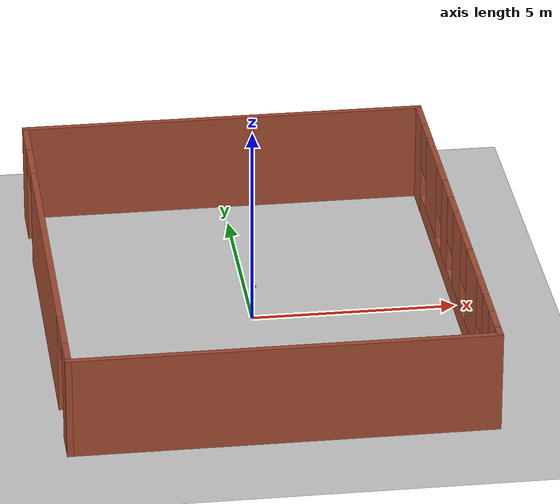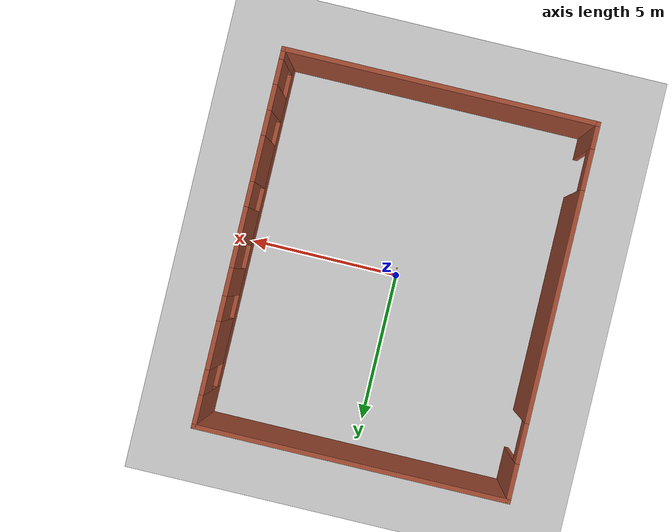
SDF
<sdf version="1.6">
 <world name="default">
  <model name="ground_plane">
   <static>1</static>
   <link name="ground_plane::link">
    <collision name="collision">
     <geometry><plane><normal>0 0 1</normal><size>100 100</size></plane></geometry>
     <surface>
      <contact><collide_bitmask>65535</collide_bitmask></contact>
      <friction><ode><mu>100</mu><mu2>50</mu2></ode></friction>
     </surface>
    </collision>
    <visual name="visual">
     <cast_shadows>0</cast_shadows>
     <geometry><plane><normal>0 0 1</normal><size>100 100</size></plane></geometry>
     <material>
      <script><uri>file://media/materials/scripts/gazebo.material</uri><name>Gazebo/Grey</name></script>
     </material>
    </visual>
   </link>
  </model>
  <model name="robot_house">
   <link name="Wall_5">
    <pose>0 6 0 0 -0 0</pose>
    <visual name="Wall_5_Visual">
     <pose>0 0 1.25 0 -0 0</pose>
     <geometry><box><size>10.15 0.15 2.5</size></box></geometry>
     <material>
      <script><uri>file://media/materials/scripts/gazebo.material</uri><name>Gazebo/Bricks</name></script>
      <ambient>1 1 1 1</ambient>
      <shader type="pixel"/>
      <diffuse>1 1 1 1</diffuse>
      <specular>0.2 0.2 0.2 1</specular>
      <emissive>0 0 0 1</emissive>
     </material>
     <meta><layer>0</layer></meta>
    </visual>
    <collision name="Wall_5_Collision">
     <pose>0 0 1.25 0 -0 0</pose>
     <geometry><box><size>10.15 0.15 2.5</size></box></geometry>
     <surface>
      <friction>
       <ode><mu>1</mu><mu2>1</mu2><fdir1>0 0 0</fdir1><slip1>0</slip1><slip2>0</slip2></ode>
       <torsional>
        <coefficient>1</coefficient>
        <patch_radius>0</patch_radius>
        <surface_radius>0</surface_radius>
        <use_patch_radius>1</use_patch_radius>
        <ode><slip>0</slip></ode>
       </torsional>
      </friction>
      <bounce><restitution_coefficient>0</restitution_coefficient><threshold>1e+06</threshold></bounce>
      <contact>
       <collide_without_contact>0</collide_without_contact>
       <collide_without_contact_bitmask>1</collide_without_contact_bitmask>
       <collide_bitmask>1</collide_bitmask>
       <ode>
        <soft_cfm>0</soft_cfm>
        <soft_erp>0.2</soft_erp>
        <kp>1e+13</kp>
        <kd>1</kd>
        <max_vel>0.01</max_vel>
        <min_depth>0</min_depth>
       </ode>
       <bullet>
        <split_impulse>1</split_impulse>
        <split_impulse_penetration_threshold>-0.01</split_impulse_penetration_threshold>
        <soft_cfm>0</soft_cfm>
        <soft_erp>0.2</soft_erp>
        <kp>1e+13</kp>
        <kd>1</kd>
       </bullet>
      </contact>
     </surface>
    </collision>
   </link>
   <link name="Wall_6">
    <pose>5 0 0 0 0 -1.5708</pose>
    <visual name="Wall_6_Visual_2">
     <pose>-3.42977 0 1.5 0 -0 0</pose>
     <geometry><box><size>1.54642 0.15 2</size></box></geometry>
     <material>
      <script><uri>file://media/materials/scripts/gazebo.material</uri><name>Gazebo/Bricks</name></script>
      <ambient>1 1 1 1</ambient>
      <shader type="pixel"/>
      <diffuse>1 1 1 1</diffuse>
      <specular>0.2 0.2 0.2 1</specular>
      <emissive>0 0 0 1</emissive>
     </material>
     <meta><layer>0</layer></meta>
    </visual>
    <visual name="Wall_6_Visual_8">
     <pose>-4.60298 0 1.9 0 -0 0</pose>
     <geometry><box><size>0.8 0.15 1.2</size></box></geometry>
     <material>
      <script><uri>file://media/materials/scripts/gazebo.material</uri><name>Gazebo/Bricks</name></script>
      <ambient>1 1 1 1</ambient>
      <shader type="pixel"/>
      <diffuse>1 1 1 1</diffuse>
      <specular>0.2 0.2 0.2 1</specular>
      <emissive>0 0 0 1</emissive>
     </material>
     <meta><layer>0</layer></meta>
    </visual>
    <visual name="Wall_6_Visual_12">
     <pose>3.64995 0 1.9 0 -0 0</pose>
     <geometry><box><size>0.8 0.15 1.2</size></box></geometry>
     <material>
      <script><uri>file://media/materials/scripts/gazebo.material</uri><name>Gazebo/Bricks</name></script>
      <ambient>1 1 1 1</ambient>
      <shader type="pixel"/>
      <diffuse>1 1 1 1</diffuse>
      <specular>0.2 0.2 0.2 1</specular>
      <emissive>0 0 0 1</emissive>
     </material>
     <meta><layer>0</layer></meta>
    </visual>
    <visual name="Wall_6_Visual_6">
     <pose>4.45907 0 1.5 0 -0 0</pose>
     <geometry><box><size>0.818223 0.15 2</size></box></geometry>
     <material>
      <script><uri>file://media/materials/scripts/gazebo.material</uri><name>Gazebo/Bricks</name></script>
      <ambient>1 1 1 1</ambient>
      <shader type="pixel"/>
      <diffuse>1 1 1 1</diffuse>
      <specular>0.2 0.2 0.2 1</specular>
      <emissive>0 0 0 1</emissive>
     </material>
     <meta><layer>0</layer></meta>
    </visual>
    <visual name="Wall_6_Visual_1">
     <pose>0.536009 0 0.25 0 -0 0</pose>
     <geometry><box><size>11.078 0.15 0.5</size></box></geometry>
     <material>
      <script><uri>file://media/materials/scripts/gazebo.material</uri><name>Gazebo/Bricks</name></script>
      <ambient>1 1 1 1</ambient>
      <shader type="pixel"/>
      <diffuse>1 1 1 1</diffuse>
      <specular>0.2 0.2 0.2 1</specular>
      <emissive>0 0 0 1</emissive>
     </material>
     <meta><layer>0</layer></meta>
    </visual>
    <visual name="Wall_6_Visual_13">
     <pose>5.26818 0 1.9 0 -0 0</pose>
     <geometry><box><size>0.8 0.15 1.2</size></box></geometry>
     <material>
      <script><uri>file://media/materials/scripts/gazebo.material</uri><name>Gazebo/Bricks</name></script>
      <ambient>1 1 1 1</ambient>
      <shader type="pixel"/>
      <diffuse>1 1 1 1</diffuse>
      <specular>0.2 0.2 0.2 1</specular>
      <emissive>0 0 0 1</emissive>
     </material>
     <meta><layer>0</layer></meta>
    </visual>
    <visual name="Wall_6_Visual_10">
     <pose>-0.557425 0 1.9 0 -0 0</pose>
     <geometry><box><size>0.8 0.15 1.2</size></box></geometry>
     <material>
      <script><uri>file://media/materials/scripts/gazebo.material</uri><name>Gazebo/Bricks</name></script>
      <ambient>1 1 1 1</ambient>
      <shader type="pixel"/>
      <diffuse>1 1 1 1</diffuse>
      <specular>0.2 0.2 0.2 1</specular>
      <emissive>0 0 0 1</emissive>
     </material>
     <meta><layer>0</layer></meta>
    </visual>
    <visual name="Wall_6_Visual_11">
     <pose>1.38444 0 1.9 0 -0 0</pose>
     <geometry><box><size>0.8 0.15 1.2</size></box></geometry>
     <material>
      <script><uri>file://media/materials/scripts/gazebo.material</uri><name>Gazebo/Bricks</name></script>
      <ambient>1 1 1 1</ambient>
      <shader type="pixel"/>
      <diffuse>1 1 1 1</diffuse>
      <specular>0.2 0.2 0.2 1</specular>
      <emissive>0 0 0 1</emissive>
     </material>
     <meta><layer>0</layer></meta>
    </visual>
    <visual name="Wall_6_Visual_7">
     <pose>5.87159 0 1.5 0 -0 0</pose>
     <geometry><box><size>0.406822 0.15 2</size></box></geometry>
     <material>
      <script><uri>file://media/materials/scripts/gazebo.material</uri><name>Gazebo/Bricks</name></script>
      <ambient>1 1 1 1</ambient>
      <shader type="pixel"/>
      <diffuse>1 1 1 1</diffuse>
      <specular>0.2 0.2 0.2 1</specular>
      <emissive>0 0 0 1</emissive>
     </material>
     <meta><layer>0</layer></meta>
    </visual>
    <visual name="Wall_6_Visual_4">
     <pose>0.413508 0 1.5 0 -0 0</pose>
     <geometry><box><size>1.14187 0.15 2</size></box></geometry>
     <material>
      <script><uri>file://media/materials/scripts/gazebo.material</uri><name>Gazebo/Bricks</name></script>
      <ambient>1 1 1 1</ambient>
      <shader type="pixel"/>
      <diffuse>1 1 1 1</diffuse>
      <specular>0.2 0.2 0.2 1</specular>
      <emissive>0 0 0 1</emissive>
     </material>
     <meta><layer>0</layer></meta>
    </visual>
    <visual name="Wall_6_Visual_5">
     <pose>2.5172 0 1.5 0 -0 0</pose>
     <geometry><box><size>1.46551 0.15 2</size></box></geometry>
     <material>
      <script><uri>file://media/materials/scripts/gazebo.material</uri><name>Gazebo/Bricks</name></script>
      <ambient>1 1 1 1</ambient>
      <shader type="pixel"/>
      <diffuse>1 1 1 1</diffuse>
      <specular>0.2 0.2 0.2 1</specular>
      <emissive>0 0 0 1</emissive>
     </material>
     <meta><layer>0</layer></meta>
    </visual>
    <visual name="Wall_6_Visual_3">
     <pose>-1.40699 0 1.5 0 -0 0</pose>
     <geometry><box><size>0.899134 0.15 2</size></box></geometry>
     <material>
      <script><uri>file://media/materials/scripts/gazebo.material</uri><name>Gazebo/Bricks</name></script>
      <ambient>1 1 1 1</ambient>
      <shader type="pixel"/>
      <diffuse>1 1 1 1</diffuse>
      <specular>0.2 0.2 0.2 1</specular>
      <emissive>0 0 0 1</emissive>
     </material>
     <meta><layer>0</layer></meta>
    </visual>
    <visual name="Wall_6_Visual_9">
     <pose>-2.25656 0 1.9 0 -0 0</pose>
     <geometry><box><size>0.8 0.15 1.2</size></box></geometry>
     <material>
      <script><uri>file://media/materials/scripts/gazebo.material</uri><name>Gazebo/Bricks</name></script>
      <ambient>1 1 1 1</ambient>
      <shader type="pixel"/>
      <diffuse>1 1 1 1</diffuse>
      <specular>0.2 0.2 0.2 1</specular>
      <emissive>0 0 0 1</emissive>
     </material>
     <meta><layer>0</layer></meta>
    </visual>
    <visual name="Wall_6_Visual_0">
     <pose>-5.53899 0 1.25 0 -0 0</pose>
     <geometry><box><size>1.07202 0.15 2.5</size></box></geometry>
     <material>
      <script><uri>file://media/materials/scripts/gazebo.material</uri><name>Gazebo/Bricks</name></script>
      <ambient>1 1 1 1</ambient>
      <shader type="pixel"/>
      <diffuse>1 1 1 1</diffuse>
      <specular>0.2 0.2 0.2 1</specular>
      <emissive>0 0 0 1</emissive>
     </material>
     <meta><layer>0</layer></meta>
    </visual>
    <collision name="Wall_6_Collision_2">
     <pose>-3.42977 0 1.5 0 -0 0</pose>
     <geometry><box><size>1.54642 0.15 2</size></box></geometry>
     <surface>
      <friction>
       <ode><mu>1</mu><mu2>1</mu2><fdir1>0 0 0</fdir1><slip1>0</slip1><slip2>0</slip2></ode>
       <torsional>
        <coefficient>1</coefficient>
        <patch_radius>0</patch_radius>
        <surface_radius>0</surface_radius>
        <use_patch_radius>1</use_patch_radius>
        <ode><slip>0</slip></ode>
       </torsional>
      </friction>
      <bounce><restitution_coefficient>0</restitution_coefficient><threshold>1e+06</threshold></bounce>
      <contact>
       <collide_without_contact>0</collide_without_contact>
       <collide_without_contact_bitmask>1</collide_without_contact_bitmask>
       <collide_bitmask>1</collide_bitmask>
       <ode>
        <soft_cfm>0</soft_cfm>
        <soft_erp>0.2</soft_erp>
        <kp>1e+13</kp>
        <kd>1</kd>
        <max_vel>0.01</max_vel>
        <min_depth>0</min_depth>
       </ode>
       <bullet>
        <split_impulse>1</split_impulse>
        <split_impulse_penetration_threshold>-0.01</split_impulse_penetration_threshold>
        <soft_cfm>0</soft_cfm>
        <soft_erp>0.2</soft_erp>
        <kp>1e+13</kp>
        <kd>1</kd>
       </bullet>
      </contact>
     </surface>
    </collision>
    <collision name="Wall_6_Collision_4">
     <pose>0.413508 0 1.5 0 -0 0</pose>
     <geometry><box><size>1.14187 0.15 2</size></box></geometry>
     <surface>
      <friction>
       <ode><mu>1</mu><mu2>1</mu2><fdir1>0 0 0</fdir1><slip1>0</slip1><slip2>0</slip2></ode>
       <torsional>
        <coefficient>1</coefficient>
        <patch_radius>0</patch_radius>
        <surface_radius>0</surface_radius>
        <use_patch_radius>1</use_patch_radius>
        <ode><slip>0</slip></ode>
       </torsional>
      </friction>
      <bounce><restitution_coefficient>0</restitution_coefficient><threshold>1e+06</threshold></bounce>
      <contact>
       <collide_without_contact>0</collide_without_contact>
       <collide_without_contact_bitmask>1</collide_without_contact_bitmask>
       <collide_bitmask>1</collide_bitmask>
       <ode>
        <soft_cfm>0</soft_cfm>
        <soft_erp>0.2</soft_erp>
        <kp>1e+13</kp>
        <kd>1</kd>
        <max_vel>0.01</max_vel>
        <min_depth>0</min_depth>
       </ode>
       <bullet>
        <split_impulse>1</split_impulse>
        <split_impulse_penetration_threshold>-0.01</split_impulse_penetration_threshold>
        <soft_cfm>0</soft_cfm>
        <soft_erp>0.2</soft_erp>
        <kp>1e+13</kp>
        <kd>1</kd>
       </bullet>
      </contact>
     </surface>
    </collision>
    <collision name="Wall_6_Collision_5">
     <pose>2.5172 0 1.5 0 -0 0</pose>
     <geometry><box><size>1.46551 0.15 2</size></box></geometry>
     <surface>
      <friction>
       <ode><mu>1</mu><mu2>1</mu2><fdir1>0 0 0</fdir1><slip1>0</slip1><slip2>0</slip2></ode>
       <torsional>
        <coefficient>1</coefficient>
        <patch_radius>0</patch_radius>
        <surface_radius>0</surface_radius>
        <use_patch_radius>1</use_patch_radius>
        <ode><slip>0</slip></ode>
       </torsional>
      </friction>
      <bounce><restitution_coefficient>0</restitution_coefficient><threshold>1e+06</threshold></bounce>
      <contact>
       <collide_without_contact>0</collide_without_contact>
       <collide_without_contact_bitmask>1</collide_without_contact_bitmask>
       <collide_bitmask>1</collide_bitmask>
       <ode>
        <soft_cfm>0</soft_cfm>
        <soft_erp>0.2</soft_erp>
        <kp>1e+13</kp>
        <kd>1</kd>
        <max_vel>0.01</max_vel>
        <min_depth>0</min_depth>
       </ode>
       <bullet>
        <split_impulse>1</split_impulse>
        <split_impulse_penetration_threshold>-0.01</split_impulse_penetration_threshold>
        <soft_cfm>0</soft_cfm>
        <soft_erp>0.2</soft_erp>
        <kp>1e+13</kp>
        <kd>1</kd>
       </bullet>
      </contact>
     </surface>
    </collision>
    <collision name="Wall_6_Collision_1">
     <pose>0.536009 0 0.25 0 -0 0</pose>
     <geometry><box><size>11.078 0.15 0.5</size></box></geometry>
     <surface>
      <friction>
       <ode><mu>1</mu><mu2>1</mu2><fdir1>0 0 0</fdir1><slip1>0</slip1><slip2>0</slip2></ode>
       <torsional>
        <coefficient>1</coefficient>
        <patch_radius>0</patch_radius>
        <surface_radius>0</surface_radius>
        <use_patch_radius>1</use_patch_radius>
        <ode><slip>0</slip></ode>
       </torsional>
      </friction>
      <bounce><restitution_coefficient>0</restitution_coefficient><threshold>1e+06</threshold></bounce>
      <contact>
       <collide_without_contact>0</collide_without_contact>
       <collide_without_contact_bitmask>1</collide_without_contact_bitmask>
       <collide_bitmask>1</collide_bitmask>
       <ode>
        <soft_cfm>0</soft_cfm>
        <soft_erp>0.2</soft_erp>
        <kp>1e+13</kp>
        <kd>1</kd>
        <max_vel>0.01</max_vel>
        <min_depth>0</min_depth>
       </ode>
       <bullet>
        <split_impulse>1</split_impulse>
        <split_impulse_penetration_threshold>-0.01</split_impulse_penetration_threshold>
        <soft_cfm>0</soft_cfm>
        <soft_erp>0.2</soft_erp>
        <kp>1e+13</kp>
        <kd>1</kd>
       </bullet>
      </contact>
     </surface>
    </collision>
    <collision name="Wall_6_Collision_8">
     <pose>-4.60298 0 1.9 0 -0 0</pose>
     <geometry><box><size>0.8 0.15 1.2</size></box></geometry>
     <surface>
      <friction>
       <ode><mu>1</mu><mu2>1</mu2><fdir1>0 0 0</fdir1><slip1>0</slip1><slip2>0</slip2></ode>
       <torsional>
        <coefficient>1</coefficient>
        <patch_radius>0</patch_radius>
        <surface_radius>0</surface_radius>
        <use_patch_radius>1</use_patch_radius>
        <ode><slip>0</slip></ode>
       </torsional>
      </friction>
      <bounce><restitution_coefficient>0</restitution_coefficient><threshold>1e+06</threshold></bounce>
      <contact>
       <collide_without_contact>0</collide_without_contact>
       <collide_without_contact_bitmask>1</collide_without_contact_bitmask>
       <collide_bitmask>1</collide_bitmask>
       <ode>
        <soft_cfm>0</soft_cfm>
        <soft_erp>0.2</soft_erp>
        <kp>1e+13</kp>
        <kd>1</kd>
        <max_vel>0.01</max_vel>
        <min_depth>0</min_depth>
       </ode>
       <bullet>
        <split_impulse>1</split_impulse>
        <split_impulse_penetration_threshold>-0.01</split_impulse_penetration_threshold>
        <soft_cfm>0</soft_cfm>
        <soft_erp>0.2</soft_erp>
        <kp>1e+13</kp>
        <kd>1</kd>
       </bullet>
      </contact>
     </surface>
    </collision>
    <collision name="Wall_6_Collision_9">
     <pose>-2.25656 0 1.9 0 -0 0</pose>
     <geometry><box><size>0.8 0.15 1.2</size></box></geometry>
     <surface>
      <friction>
       <ode><mu>1</mu><mu2>1</mu2><fdir1>0 0 0</fdir1><slip1>0</slip1><slip2>0</slip2></ode>
       <torsional>
        <coefficient>1</coefficient>
        <patch_radius>0</patch_radius>
        <surface_radius>0</surface_radius>
        <use_patch_radius>1</use_patch_radius>
        <ode><slip>0</slip></ode>
       </torsional>
      </friction>
      <bounce><restitution_coefficient>0</restitution_coefficient><threshold>1e+06</threshold></bounce>
      <contact>
       <collide_without_contact>0</collide_without_contact>
       <collide_without_contact_bitmask>1</collide_without_contact_bitmask>
       <collide_bitmask>1</collide_bitmask>
       <ode>
        <soft_cfm>0</soft_cfm>
        <soft_erp>0.2</soft_erp>
        <kp>1e+13</kp>
        <kd>1</kd>
        <max_vel>0.01</max_vel>
        <min_depth>0</min_depth>
       </ode>
       <bullet>
        <split_impulse>1</split_impulse>
        <split_impulse_penetration_threshold>-0.01</split_impulse_penetration_threshold>
        <soft_cfm>0</soft_cfm>
        <soft_erp>0.2</soft_erp>
        <kp>1e+13</kp>
        <kd>1</kd>
       </bullet>
      </contact>
     </surface>
    </collision>
    <collision name="Wall_6_Collision_10">
     <pose>-0.557425 0 1.9 0 -0 0</pose>
     <geometry><box><size>0.8 0.15 1.2</size></box></geometry>
     <surface>
      <friction>
       <ode><mu>1</mu><mu2>1</mu2><fdir1>0 0 0</fdir1><slip1>0</slip1><slip2>0</slip2></ode>
       <torsional>
        <coefficient>1</coefficient>
        <patch_radius>0</patch_radius>
        <surface_radius>0</surface_radius>
        <use_patch_radius>1</use_patch_radius>
        <ode><slip>0</slip></ode>
       </torsional>
      </friction>
      <bounce><restitution_coefficient>0</restitution_coefficient><threshold>1e+06</threshold></bounce>
      <contact>
       <collide_without_contact>0</collide_without_contact>
       <collide_without_contact_bitmask>1</collide_without_contact_bitmask>
       <collide_bitmask>1</collide_bitmask>
       <ode>
        <soft_cfm>0</soft_cfm>
        <soft_erp>0.2</soft_erp>
        <kp>1e+13</kp>
        <kd>1</kd>
        <max_vel>0.01</max_vel>
        <min_depth>0</min_depth>
       </ode>
       <bullet>
        <split_impulse>1</split_impulse>
        <split_impulse_penetration_threshold>-0.01</split_impulse_penetration_threshold>
        <soft_cfm>0</soft_cfm>
        <soft_erp>0.2</soft_erp>
        <kp>1e+13</kp>
        <kd>1</kd>
       </bullet>
      </contact>
     </surface>
    </collision>
    <collision name="Wall_6_Collision_11">
     <pose>1.38444 0 1.9 0 -0 0</pose>
     <geometry><box><size>0.8 0.15 1.2</size></box></geometry>
     <surface>
      <friction>
       <ode><mu>1</mu><mu2>1</mu2><fdir1>0 0 0</fdir1><slip1>0</slip1><slip2>0</slip2></ode>
       <torsional>
        <coefficient>1</coefficient>
        <patch_radius>0</patch_radius>
        <surface_radius>0</surface_radius>
        <use_patch_radius>1</use_patch_radius>
        <ode><slip>0</slip></ode>
       </torsional>
      </friction>
      <bounce><restitution_coefficient>0</restitution_coefficient><threshold>1e+06</threshold></bounce>
      <contact>
       <collide_without_contact>0</collide_without_contact>
       <collide_without_contact_bitmask>1</collide_without_contact_bitmask>
       <collide_bitmask>1</collide_bitmask>
       <ode>
        <soft_cfm>0</soft_cfm>
        <soft_erp>0.2</soft_erp>
        <kp>1e+13</kp>
        <kd>1</kd>
        <max_vel>0.01</max_vel>
        <min_depth>0</min_depth>
       </ode>
       <bullet>
        <split_impulse>1</split_impulse>
        <split_impulse_penetration_threshold>-0.01</split_impulse_penetration_threshold>
        <soft_cfm>0</soft_cfm>
        <soft_erp>0.2</soft_erp>
        <kp>1e+13</kp>
        <kd>1</kd>
       </bullet>
      </contact>
     </surface>
    </collision>
    <collision name="Wall_6_Collision_12">
     <pose>3.64995 0 1.9 0 -0 0</pose>
     <geometry><box><size>0.8 0.15 1.2</size></box></geometry>
     <surface>
      <friction>
       <ode><mu>1</mu><mu2>1</mu2><fdir1>0 0 0</fdir1><slip1>0</slip1><slip2>0</slip2></ode>
       <torsional>
        <coefficient>1</coefficient>
        <patch_radius>0</patch_radius>
        <surface_radius>0</surface_radius>
        <use_patch_radius>1</use_patch_radius>
        <ode><slip>0</slip></ode>
       </torsional>
      </friction>
      <bounce><restitution_coefficient>0</restitution_coefficient><threshold>1e+06</threshold></bounce>
      <contact>
       <collide_without_contact>0</collide_without_contact>
       <collide_without_contact_bitmask>1</collide_without_contact_bitmask>
       <collide_bitmask>1</collide_bitmask>
       <ode>
        <soft_cfm>0</soft_cfm>
        <soft_erp>0.2</soft_erp>
        <kp>1e+13</kp>
        <kd>1</kd>
        <max_vel>0.01</max_vel>
        <min_depth>0</min_depth>
       </ode>
       <bullet>
        <split_impulse>1</split_impulse>
        <split_impulse_penetration_threshold>-0.01</split_impulse_penetration_threshold>
        <soft_cfm>0</soft_cfm>
        <soft_erp>0.2</soft_erp>
        <kp>1e+13</kp>
        <kd>1</kd>
       </bullet>
      </contact>
     </surface>
    </collision>
    <collision name="Wall_6_Collision_13">
     <pose>5.26818 0 1.9 0 -0 0</pose>
     <geometry><box><size>0.8 0.15 1.2</size></box></geometry>
     <surface>
      <friction>
       <ode><mu>1</mu><mu2>1</mu2><fdir1>0 0 0</fdir1><slip1>0</slip1><slip2>0</slip2></ode>
       <torsional>
        <coefficient>1</coefficient>
        <patch_radius>0</patch_radius>
        <surface_radius>0</surface_radius>
        <use_patch_radius>1</use_patch_radius>
        <ode><slip>0</slip></ode>
       </torsional>
      </friction>
      <bounce><restitution_coefficient>0</restitution_coefficient><threshold>1e+06</threshold></bounce>
      <contact>
       <collide_without_contact>0</collide_without_contact>
       <collide_without_contact_bitmask>1</collide_without_contact_bitmask>
       <collide_bitmask>1</collide_bitmask>
       <ode>
        <soft_cfm>0</soft_cfm>
        <soft_erp>0.2</soft_erp>
        <kp>1e+13</kp>
        <kd>1</kd>
        <max_vel>0.01</max_vel>
        <min_depth>0</min_depth>
       </ode>
       <bullet>
        <split_impulse>1</split_impulse>
        <split_impulse_penetration_threshold>-0.01</split_impulse_penetration_threshold>
        <soft_cfm>0</soft_cfm>
        <soft_erp>0.2</soft_erp>
        <kp>1e+13</kp>
        <kd>1</kd>
       </bullet>
      </contact>
     </surface>
    </collision>
    <collision name="Wall_6_Collision_3">
     <pose>-1.40699 0 1.5 0 -0 0</pose>
     <geometry><box><size>0.899134 0.15 2</size></box></geometry>
     <surface>
      <friction>
       <ode><mu>1</mu><mu2>1</mu2><fdir1>0 0 0</fdir1><slip1>0</slip1><slip2>0</slip2></ode>
       <torsional>
        <coefficient>1</coefficient>
        <patch_radius>0</patch_radius>
        <surface_radius>0</surface_radius>
        <use_patch_radius>1</use_patch_radius>
        <ode><slip>0</slip></ode>
       </torsional>
      </friction>
      <bounce><restitution_coefficient>0</restitution_coefficient><threshold>1e+06</threshold></bounce>
      <contact>
       <collide_without_contact>0</collide_without_contact>
       <collide_without_contact_bitmask>1</collide_without_contact_bitmask>
       <collide_bitmask>1</collide_bitmask>
       <ode>
        <soft_cfm>0</soft_cfm>
        <soft_erp>0.2</soft_erp>
        <kp>1e+13</kp>
        <kd>1</kd>
        <max_vel>0.01</max_vel>
        <min_depth>0</min_depth>
       </ode>
       <bullet>
        <split_impulse>1</split_impulse>
        <split_impulse_penetration_threshold>-0.01</split_impulse_penetration_threshold>
        <soft_cfm>0</soft_cfm>
        <soft_erp>0.2</soft_erp>
        <kp>1e+13</kp>
        <kd>1</kd>
       </bullet>
      </contact>
     </surface>
    </collision>
    <collision name="Wall_6_Collision_6">
     <pose>4.45907 0 1.5 0 -0 0</pose>
     <geometry><box><size>0.818223 0.15 2</size></box></geometry>
     <surface>
      <friction>
       <ode><mu>1</mu><mu2>1</mu2><fdir1>0 0 0</fdir1><slip1>0</slip1><slip2>0</slip2></ode>
       <torsional>
        <coefficient>1</coefficient>
        <patch_radius>0</patch_radius>
        <surface_radius>0</surface_radius>
        <use_patch_radius>1</use_patch_radius>
        <ode><slip>0</slip></ode>
       </torsional>
      </friction>
      <bounce><restitution_coefficient>0</restitution_coefficient><threshold>1e+06</threshold></bounce>
      <contact>
       <collide_without_contact>0</collide_without_contact>
       <collide_without_contact_bitmask>1</collide_without_contact_bitmask>
       <collide_bitmask>1</collide_bitmask>
       <ode>
        <soft_cfm>0</soft_cfm>
        <soft_erp>0.2</soft_erp>
        <kp>1e+13</kp>
        <kd>1</kd>
        <max_vel>0.01</max_vel>
        <min_depth>0</min_depth>
       </ode>
       <bullet>
        <split_impulse>1</split_impulse>
        <split_impulse_penetration_threshold>-0.01</split_impulse_penetration_threshold>
        <soft_cfm>0</soft_cfm>
        <soft_erp>0.2</soft_erp>
        <kp>1e+13</kp>
        <kd>1</kd>
       </bullet>
      </contact>
     </surface>
    </collision>
    <collision name="Wall_6_Collision_7">
     <pose>5.87159 0 1.5 0 -0 0</pose>
     <geometry><box><size>0.406822 0.15 2</size></box></geometry>
     <surface>
      <friction>
       <ode><mu>1</mu><mu2>1</mu2><fdir1>0 0 0</fdir1><slip1>0</slip1><slip2>0</slip2></ode>
       <torsional>
        <coefficient>1</coefficient>
        <patch_radius>0</patch_radius>
        <surface_radius>0</surface_radius>
        <use_patch_radius>1</use_patch_radius>
        <ode><slip>0</slip></ode>
       </torsional>
      </friction>
      <bounce><restitution_coefficient>0</restitution_coefficient><threshold>1e+06</threshold></bounce>
      <contact>
       <collide_without_contact>0</collide_without_contact>
       <collide_without_contact_bitmask>1</collide_without_contact_bitmask>
       <collide_bitmask>1</collide_bitmask>
       <ode>
        <soft_cfm>0</soft_cfm>
        <soft_erp>0.2</soft_erp>
        <kp>1e+13</kp>
        <kd>1</kd>
        <max_vel>0.01</max_vel>
        <min_depth>0</min_depth>
       </ode>
       <bullet>
        <split_impulse>1</split_impulse>
        <split_impulse_penetration_threshold>-0.01</split_impulse_penetration_threshold>
        <soft_cfm>0</soft_cfm>
        <soft_erp>0.2</soft_erp>
        <kp>1e+13</kp>
        <kd>1</kd>
       </bullet>
      </contact>
     </surface>
    </collision>
    <collision name="Wall_6_Collision_0">
     <pose>-5.53899 0 1.25 0 -0 0</pose>
     <geometry><box><size>1.07202 0.15 2.5</size></box></geometry>
     <surface>
      <friction>
       <ode><mu>1</mu><mu2>1</mu2><fdir1>0 0 0</fdir1><slip1>0</slip1><slip2>0</slip2></ode>
       <torsional>
        <coefficient>1</coefficient>
        <patch_radius>0</patch_radius>
        <surface_radius>0</surface_radius>
        <use_patch_radius>1</use_patch_radius>
        <ode><slip>0</slip></ode>
       </torsional>
      </friction>
      <bounce><restitution_coefficient>0</restitution_coefficient><threshold>1e+06</threshold></bounce>
      <contact>
       <collide_without_contact>0</collide_without_contact>
       <collide_without_contact_bitmask>1</collide_without_contact_bitmask>
       <collide_bitmask>1</collide_bitmask>
       <ode>
        <soft_cfm>0</soft_cfm>
        <soft_erp>0.2</soft_erp>
        <kp>1e+13</kp>
        <kd>1</kd>
        <max_vel>0.01</max_vel>
        <min_depth>0</min_depth>
       </ode>
       <bullet>
        <split_impulse>1</split_impulse>
        <split_impulse_penetration_threshold>-0.01</split_impulse_penetration_threshold>
        <soft_cfm>0</soft_cfm>
        <soft_erp>0.2</soft_erp>
        <kp>1e+13</kp>
        <kd>1</kd>
       </bullet>
      </contact>
     </surface>
    </collision>
   </link>
   <link name="Wall_7">
    <pose>0 -6 0 0 -0 3.14159</pose>
    <visual name="Wall_7_Visual">
     <pose>0 0 1.25 0 -0 0</pose>
     <geometry><box><size>10.15 0.15 2.5</size></box></geometry>
     <material>
      <script><uri>file://media/materials/scripts/gazebo.material</uri><name>Gazebo/Bricks</name></script>
      <ambient>1 1 1 1</ambient>
      <shader type="pixel"/>
      <diffuse>1 1 1 1</diffuse>
      <specular>0.2 0.2 0.2 1</specular>
      <emissive>0 0 0 1</emissive>
     </material>
     <meta><layer>0</layer></meta>
    </visual>
    <collision name="Wall_7_Collision">
     <pose>0 0 1.25 0 -0 0</pose>
     <geometry><box><size>10.15 0.15 2.5</size></box></geometry>
     <surface>
      <friction>
       <ode><mu>1</mu><mu2>1</mu2><fdir1>0 0 0</fdir1><slip1>0</slip1><slip2>0</slip2></ode>
       <torsional>
        <coefficient>1</coefficient>
        <patch_radius>0</patch_radius>
        <surface_radius>0</surface_radius>
        <use_patch_radius>1</use_patch_radius>
        <ode><slip>0</slip></ode>
       </torsional>
      </friction>
      <bounce><restitution_coefficient>0</restitution_coefficient><threshold>1e+06</threshold></bounce>
      <contact>
       <collide_without_contact>0</collide_without_contact>
       <collide_without_contact_bitmask>1</collide_without_contact_bitmask>
       <collide_bitmask>1</collide_bitmask>
       <ode>
        <soft_cfm>0</soft_cfm>
        <soft_erp>0.2</soft_erp>
        <kp>1e+13</kp>
        <kd>1</kd>
        <max_vel>0.01</max_vel>
        <min_depth>0</min_depth>
       </ode>
       <bullet>
        <split_impulse>1</split_impulse>
        <split_impulse_penetration_threshold>-0.01</split_impulse_penetration_threshold>
        <soft_cfm>0</soft_cfm>
        <soft_erp>0.2</soft_erp>
        <kp>1e+13</kp>
        <kd>1</kd>
       </bullet>
      </contact>
     </surface>
    </collision>
   </link>
   <link name="Wall_8">
    <pose>-5 0 0 0 -0 1.5708</pose>
    <visual name="Wall_8_Visual_0">
     <pose>-5.63743 0 1.25 0 -0 0</pose>
     <geometry><box><size>0.87514 0.15 2.5</size></box></geometry>
     <material>
      <script><uri>file://media/materials/scripts/gazebo.material</uri><name>Gazebo/Bricks</name></script>
      <ambient>1 1 1 1</ambient>
      <shader type="pixel"/>
      <diffuse>1 1 1 1</diffuse>
      <specular>0.2 0.2 0.2 1</specular>
      <emissive>0 0 0 1</emissive>
     </material>
     <meta><layer>0</layer></meta>
    </visual>
    <visual name="Wall_8_Visual_1">
     <pose>-0.1843 0 1.25 0 -0 0</pose>
     <geometry><box><size>7.41283 0.15 2.5</size></box></geometry>
     <material>
      <script><uri>file://media/materials/scripts/gazebo.material</uri><name>Gazebo/Bricks</name></script>
      <ambient>1 1 1 1</ambient>
      <shader type="pixel"/>
      <diffuse>1 1 1 1</diffuse>
      <specular>0.2 0.2 0.2 1</specular>
      <emissive>0 0 0 1</emissive>
     </material>
     <meta><layer>0</layer></meta>
    </visual>
    <visual name="Wall_8_Visual_2">
     <pose>5.43964 0 1.25 0 -0 0</pose>
     <geometry><box><size>1.27073 0.15 2.5</size></box></geometry>
     <material>
      <script><uri>file://media/materials/scripts/gazebo.material</uri><name>Gazebo/Bricks</name></script>
      <ambient>1 1 1 1</ambient>
      <shader type="pixel"/>
      <diffuse>1 1 1 1</diffuse>
      <specular>0.2 0.2 0.2 1</specular>
      <emissive>0 0 0 1</emissive>
     </material>
     <meta><layer>0</layer></meta>
    </visual>
    <visual name="Wall_8_Visual_3">
     <pose>-4.54529 0 2.25 0 -0 0</pose>
     <geometry><box><size>1.30915 0.15 0.5</size></box></geometry>
     <material>
      <script><uri>file://media/materials/scripts/gazebo.material</uri><name>Gazebo/Bricks</name></script>
      <ambient>1 1 1 1</ambient>
      <shader type="pixel"/>
      <diffuse>1 1 1 1</diffuse>
      <specular>0.2 0.2 0.2 1</specular>
      <emissive>0 0 0 1</emissive>
     </material>
     <meta><layer>0</layer></meta>
    </visual>
    <visual name="Wall_8_Visual_4">
     <pose>4.16319 0 2.25 0 -0 0</pose>
     <geometry><box><size>1.28216 0.15 0.5</size></box></geometry>
     <material>
      <script><uri>file://media/materials/scripts/gazebo.material</uri><name>Gazebo/Bricks</name></script>
      <ambient>1 1 1 1</ambient>
      <shader type="pixel"/>
      <diffuse>1 1 1 1</diffuse>
      <specular>0.2 0.2 0.2 1</specular>
      <emissive>0 0 0 1</emissive>
     </material>
     <meta><layer>0</layer></meta>
    </visual>
    <collision name="Wall_8_Collision_0">
     <pose>-5.63743 0 1.25 0 -0 0</pose>
     <geometry><box><size>0.87514 0.15 2.5</size></box></geometry>
     <surface>
      <friction>
       <ode><mu>1</mu><mu2>1</mu2><fdir1>0 0 0</fdir1><slip1>0</slip1><slip2>0</slip2></ode>
       <torsional>
        <coefficient>1</coefficient>
        <patch_radius>0</patch_radius>
        <surface_radius>0</surface_radius>
        <use_patch_radius>1</use_patch_radius>
        <ode><slip>0</slip></ode>
       </torsional>
      </friction>
      <bounce><restitution_coefficient>0</restitution_coefficient><threshold>1e+06</threshold></bounce>
      <contact>
       <collide_without_contact>0</collide_without_contact>
       <collide_without_contact_bitmask>1</collide_without_contact_bitmask>
       <collide_bitmask>1</collide_bitmask>
       <ode>
        <soft_cfm>0</soft_cfm>
        <soft_erp>0.2</soft_erp>
        <kp>1e+13</kp>
        <kd>1</kd>
        <max_vel>0.01</max_vel>
        <min_depth>0</min_depth>
       </ode>
       <bullet>
        <split_impulse>1</split_impulse>
        <split_impulse_penetration_threshold>-0.01</split_impulse_penetration_threshold>
        <soft_cfm>0</soft_cfm>
        <soft_erp>0.2</soft_erp>
        <kp>1e+13</kp>
        <kd>1</kd>
       </bullet>
      </contact>
     </surface>
    </collision>
    <collision name="Wall_8_Collision_1">
     <pose>-0.1843 0 1.25 0 -0 0</pose>
     <geometry><box><size>7.41283 0.15 2.5</size></box></geometry>
     <surface>
      <friction>
       <ode><mu>1</mu><mu2>1</mu2><fdir1>0 0 0</fdir1><slip1>0</slip1><slip2>0</slip2></ode>
       <torsional>
        <coefficient>1</coefficient>
        <patch_radius>0</patch_radius>
        <surface_radius>0</surface_radius>
        <use_patch_radius>1</use_patch_radius>
        <ode><slip>0</slip></ode>
       </torsional>
      </friction>
      <bounce><restitution_coefficient>0</restitution_coefficient><threshold>1e+06</threshold></bounce>
      <contact>
       <collide_without_contact>0</collide_without_contact>
       <collide_without_contact_bitmask>1</collide_without_contact_bitmask>
       <collide_bitmask>1</collide_bitmask>
       <ode>
        <soft_cfm>0</soft_cfm>
        <soft_erp>0.2</soft_erp>
        <kp>1e+13</kp>
        <kd>1</kd>
        <max_vel>0.01</max_vel>
        <min_depth>0</min_depth>
       </ode>
       <bullet>
        <split_impulse>1</split_impulse>
        <split_impulse_penetration_threshold>-0.01</split_impulse_penetration_threshold>
        <soft_cfm>0</soft_cfm>
        <soft_erp>0.2</soft_erp>
        <kp>1e+13</kp>
        <kd>1</kd>
       </bullet>
      </contact>
     </surface>
    </collision>
    <collision name="Wall_8_Collision_2">
     <pose>5.43964 0 1.25 0 -0 0</pose>
     <geometry><box><size>1.27073 0.15 2.5</size></box></geometry>
     <surface>
      <friction>
       <ode><mu>1</mu><mu2>1</mu2><fdir1>0 0 0</fdir1><slip1>0</slip1><slip2>0</slip2></ode>
       <torsional>
        <coefficient>1</coefficient>
        <patch_radius>0</patch_radius>
        <surface_radius>0</surface_radius>
        <use_patch_radius>1</use_patch_radius>
        <ode><slip>0</slip></ode>
       </torsional>
      </friction>
      <bounce><restitution_coefficient>0</restitution_coefficient><threshold>1e+06</threshold></bounce>
      <contact>
       <collide_without_contact>0</collide_without_contact>
       <collide_without_contact_bitmask>1</collide_without_contact_bitmask>
       <collide_bitmask>1</collide_bitmask>
       <ode>
        <soft_cfm>0</soft_cfm>
        <soft_erp>0.2</soft_erp>
        <kp>1e+13</kp>
        <kd>1</kd>
        <max_vel>0.01</max_vel>
        <min_depth>0</min_depth>
       </ode>
       <bullet>
        <split_impulse>1</split_impulse>
        <split_impulse_penetration_threshold>-0.01</split_impulse_penetration_threshold>
        <soft_cfm>0</soft_cfm>
        <soft_erp>0.2</soft_erp>
        <kp>1e+13</kp>
        <kd>1</kd>
       </bullet>
      </contact>
     </surface>
    </collision>
    <collision name="Wall_8_Collision_4">
     <pose>4.16319 0 2.25 0 -0 0</pose>
     <geometry><box><size>1.28216 0.15 0.5</size></box></geometry>
     <surface>
      <friction>
       <ode><mu>1</mu><mu2>1</mu2><fdir1>0 0 0</fdir1><slip1>0</slip1><slip2>0</slip2></ode>
       <torsional>
        <coefficient>1</coefficient>
        <patch_radius>0</patch_radius>
        <surface_radius>0</surface_radius>
        <use_patch_radius>1</use_patch_radius>
        <ode><slip>0</slip></ode>
       </torsional>
      </friction>
      <bounce><restitution_coefficient>0</restitution_coefficient><threshold>1e+06</threshold></bounce>
      <contact>
       <collide_without_contact>0</collide_without_contact>
       <collide_without_contact_bitmask>1</collide_without_contact_bitmask>
       <collide_bitmask>1</collide_bitmask>
       <ode>
        <soft_cfm>0</soft_cfm>
        <soft_erp>0.2</soft_erp>
        <kp>1e+13</kp>
        <kd>1</kd>
        <max_vel>0.01</max_vel>
        <min_depth>0</min_depth>
       </ode>
       <bullet>
        <split_impulse>1</split_impulse>
        <split_impulse_penetration_threshold>-0.01</split_impulse_penetration_threshold>
        <soft_cfm>0</soft_cfm>
        <soft_erp>0.2</soft_erp>
        <kp>1e+13</kp>
        <kd>1</kd>
       </bullet>
      </contact>
     </surface>
    </collision>
    <collision name="Wall_8_Collision_3">
     <pose>-4.54529 0 2.25 0 -0 0</pose>
     <geometry><box><size>1.30915 0.15 0.5</size></box></geometry>
     <surface>
      <friction>
       <ode><mu>1</mu><mu2>1</mu2><fdir1>0 0 0</fdir1><slip1>0</slip1><slip2>0</slip2></ode>
       <torsional>
        <coefficient>1</coefficient>
        <patch_radius>0</patch_radius>
        <surface_radius>0</surface_radius>
        <use_patch_radius>1</use_patch_radius>
        <ode><slip>0</slip></ode>
       </torsional>
      </friction>
      <bounce><restitution_coefficient>0</restitution_coefficient><threshold>1e+06</threshold></bounce>
      <contact>
       <collide_without_contact>0</collide_without_contact>
       <collide_without_contact_bitmask>1</collide_without_contact_bitmask>
       <collide_bitmask>1</collide_bitmask>
       <ode>
        <soft_cfm>0</soft_cfm>
        <soft_erp>0.2</soft_erp>
        <kp>1e+13</kp>
        <kd>1</kd>
        <max_vel>0.01</max_vel>
        <min_depth>0</min_depth>
       </ode>
       <bullet>
        <split_impulse>1</split_impulse>
        <split_impulse_penetration_threshold>-0.01</split_impulse_penetration_threshold>
        <soft_cfm>0</soft_cfm>
        <soft_erp>0.2</soft_erp>
        <kp>1e+13</kp>
        <kd>1</kd>
       </bullet>
      </contact>
     </surface>
    </collision>
   </link>
   <static>1</static>
  </model>
  <model name="wood_cube_5cm">
   <link name="link">
    <pose>0 0 0.025 0 -0 0</pose>
    <inertial>
     <mass>0.0565</mass>
     <inertia>
      <ixx>2.35417e-05</ixx>
      <ixy>0</ixy>
      <ixz>0</ixz>
      <iyy>2.35417e-05</iyy>
      <iyz>0</iyz>
      <izz>2.35417e-05</izz>
     </inertia>
    </inertial>
    <collision name="collision">
     <geometry><box><size>0.05 0.05 0.05</size></box></geometry>
     <surface>
      <contact>
       <poissons_ratio>0.347</poissons_ratio>
       <elastic_modulus>8.8e+09</elastic_modulus>
       <ode><kp>100000</kp><kd>1</kd><max_vel>1</max_vel><min_depth>0.001</min_depth></ode>
      </contact>
      <friction>
       <torsional>
        <coefficient>1</coefficient>
        <use_patch_radius>0</use_patch_radius>
        <surface_radius>0.05</surface_radius>
       </torsional>
      </friction>
     </surface>
    </collision>
    <visual name="visual">
     <geometry><box><size>0.05 0.05 0.05</size></box></geometry>
     <material>
      <script><uri>file://media/materials/scripts/gazebo.material</uri><name>Gazebo/Wood</name></script>
     </material>
    </visual>
   </link>
   <pose>0.02735 -0.226016 0.963761 0 1.7e-05 0.000543</pose>
  </model>
 </world>
</sdf>
